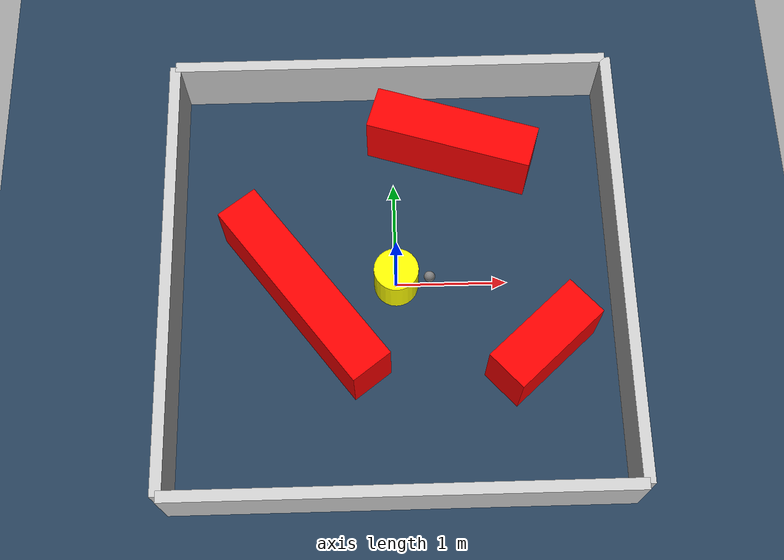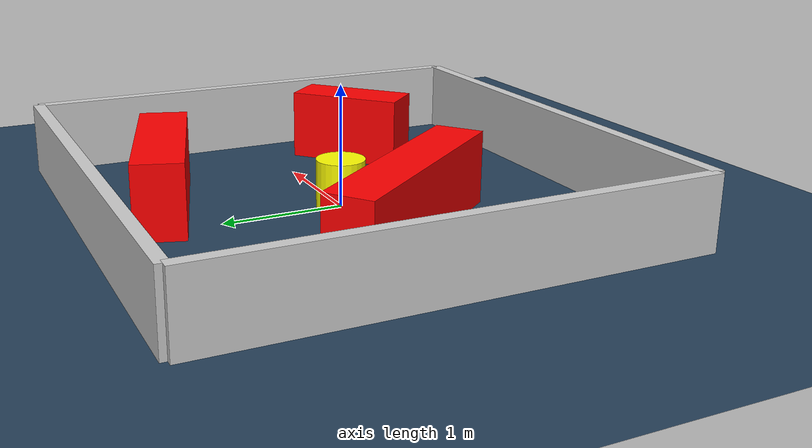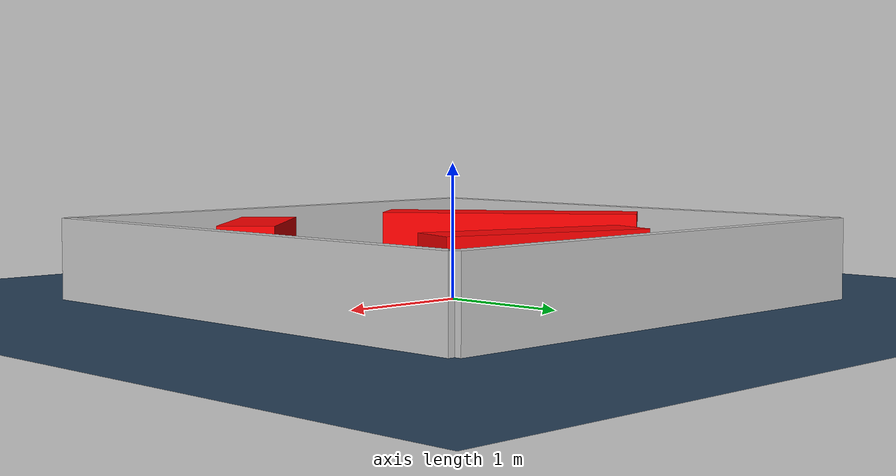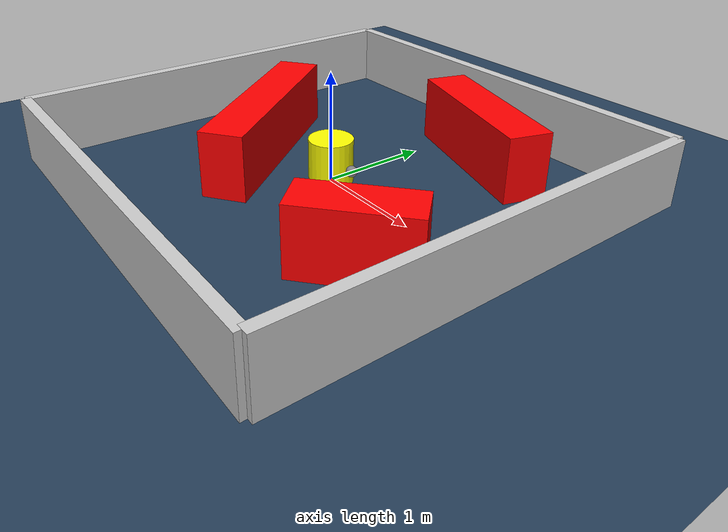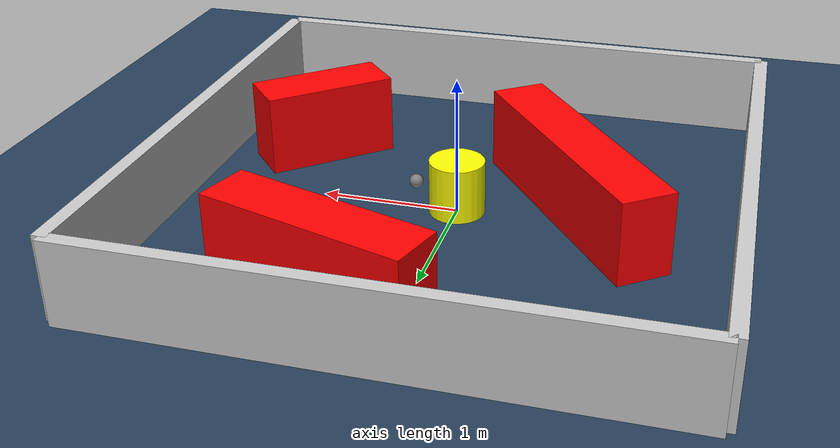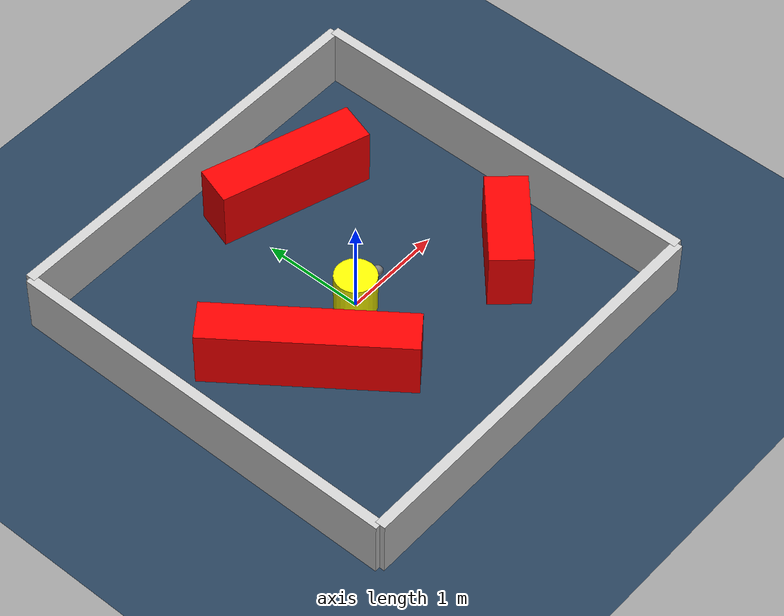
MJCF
<?xml version="1.0" ?>
<mujoco model="generated_environment">
  <option timestep="0.01" integrator="RK4" cone="elliptic"/>
  <default>
    <geom density="1"/>
  </default>
  <asset>
    <texture builtin="gradient" height="3072" rgb1="0.3 0.5 0.7" rgb2="0 0 0" type="skybox" width="512"/>
    <texture builtin="checker" height="300" mark="edge" markrgb="0.8 0.8 0.8" name="groundplane" rgb1="0.2 0.3 0.4" rgb2="0.1 0.2 0.3" type="2d" width="300"/>
    <material name="groundplane" reflectance="0.2" texrepeat="5 5" texture="groundplane" texuniform="true"/>
    <material name="robot" rgba="0.0 1.0 0.0 1"/>
  </asset>
  <worldbody>
    <light dir="0 0 -1" directional="true" pos="0 0 1.5"/>
    <geom condim="4" friction="1.0 0.005 0.001" material="groundplane" name="floor" size="0 0 0.05" type="plane"/>
    <body name="walls">
      <geom name="wall_1" condim="4" pos="-2.0 0.0 0.3" rgba="0.800000011920929 0.800000011920929 0.800000011920929 1.0" size="0.05 2.0 0.3" type="box"/>
      <geom name="wall_2" condim="4" pos="2.0 0.0 0.3" rgba="0.800000011920929 0.800000011920929 0.800000011920929 1.0" size="0.05 2.0 0.3" type="box"/>
      <geom name="wall_3" condim="4" pos="0.0 -2.0 0.3" rgba="0.800000011920929 0.800000011920929 0.800000011920929 1.0" size="2.0 0.05 0.3" type="box"/>
      <geom name="wall_4" condim="4" pos="0.0 2.0 0.3" rgba="0.800000011920929 0.800000011920929 0.800000011920929 1.0" size="2.0 0.05 0.3" type="box"/>
    </body>
    <body name="robot">
      <joint name="joint_x" type="slide" pos="0 0 0" axis="1 0 0"/>
      <joint name="joint_y" type="slide" pos="0 0 0" axis="0 1 0"/>
      <geom name="robot" type="sphere" pos="0.3 0.0 0.2" size="0.05" mass="5." friction="1.0 0.005 0.0001" condim="4" rgba="0.5 0.5 0.5 1.0"/>
      <site name="sensor_ball"/>
    </body>
    <body name="obstacle_movable_1">
      <geom name="obstacle_movable_1" condim="4" pos="0.0 0.0 0.2" euler="0 0 0.0" friction="1.0 0.005 0.001" rgba="1.0 1.0 0.0 1.0" size="0.2 0.2 0.0" type="cylinder" mass="0.1"/>
      <joint type="free"/>
    </body>
    <body name="obstacle_2_static">
      <geom name="obstacle_2_static" condim="4" pos="1.2636355550297547 -0.692705428990436 0.3" euler="0 0 222.03767775808183" friction="1.0 0.005 0.001" rgba="1 0 0 1" size="0.49395072899245845 0.2 0.3" type="box"/>
    </body>
    <body name="obstacle_3_static">
      <geom name="obstacle_3_static" condim="4" pos="-0.8166949592162878 -0.1745877320947109 0.3" euler="0 0 127.12910918007302" friction="1.0 0.005 0.001" rgba="1 0 0 1" size="0.976189718946884 0.2 0.3" type="box"/>
    </body>
    <body name="obstacle_4_static">
      <geom name="obstacle_4_static" condim="4" pos="0.5492692697316981 1.3078928674537031 0.3" euler="0 0 342.54704682782204" friction="1.0 0.005 0.001" rgba="1 0 0 1" size="0.7616709224716488 0.2 0.3" type="box"/>
    </body>
  </worldbody>
  <actuator>
    <motor name="actuator_x" joint="joint_x" gear="1" ctrlrange="-1 1"/>
    <motor name="actuator_y" joint="joint_y" gear="1" ctrlrange="-1 1"/>
  </actuator>
</mujoco>
